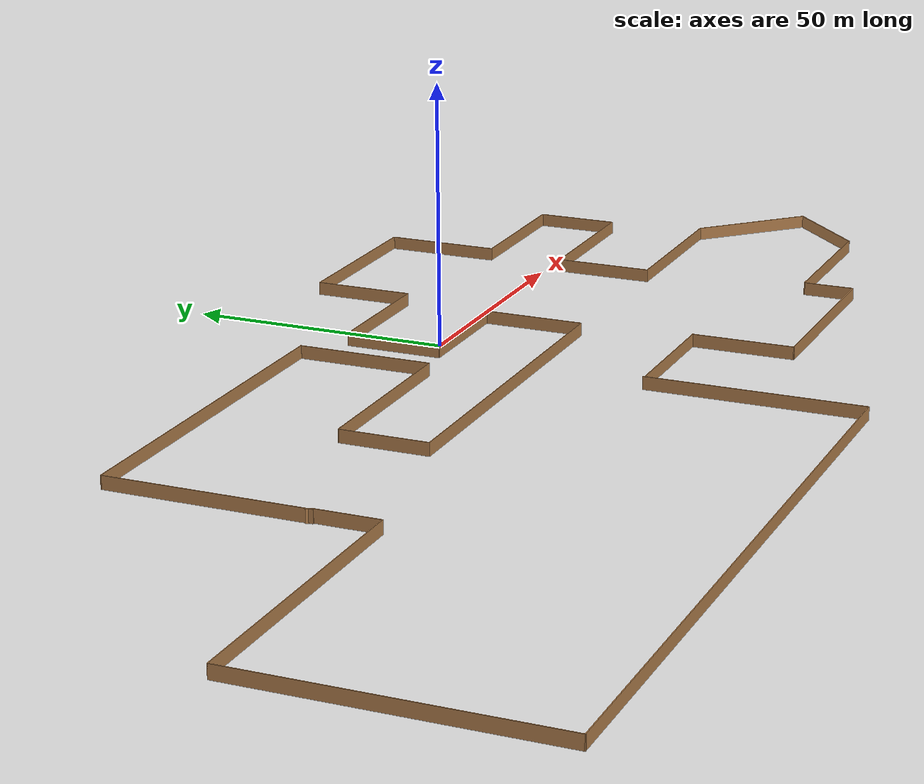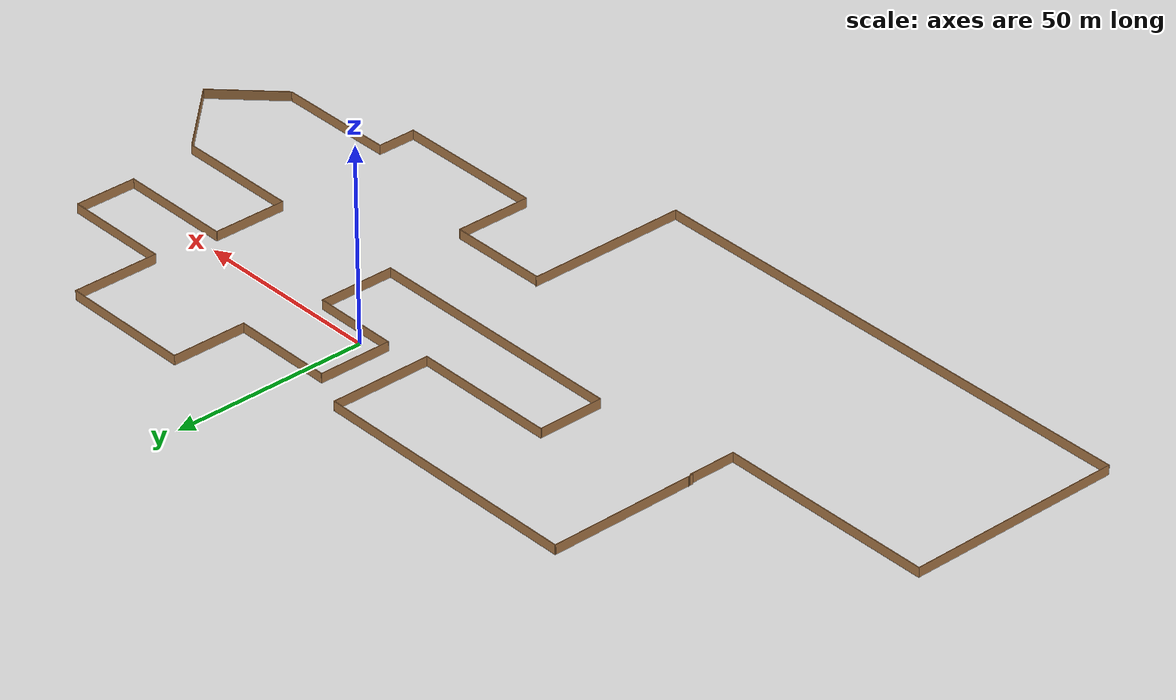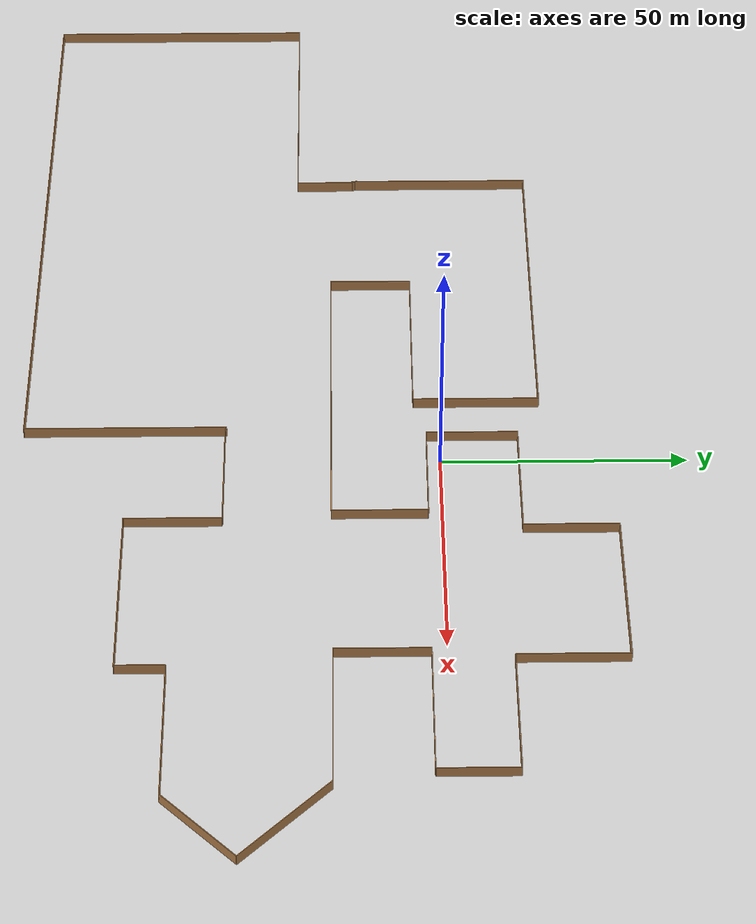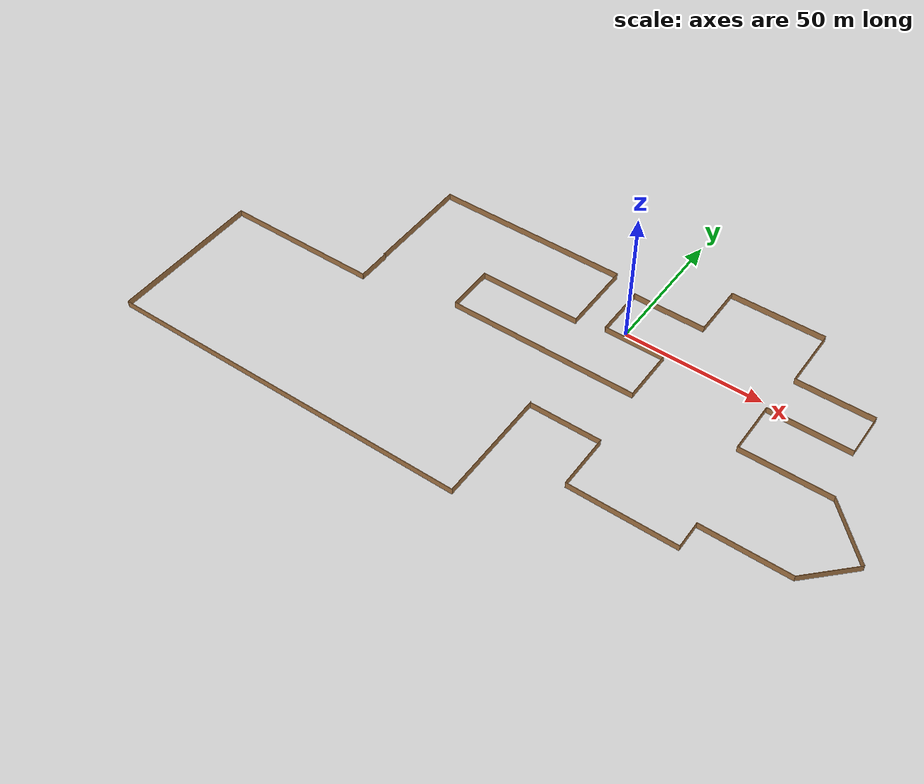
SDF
<?xml version='1.0'?>
<sdf version='1.7'>
  <model name='MediumBldng'>
    <pose>-19.9355 -24.9464 0 0 -0 0</pose>
    <link name='Wall_10'>
      <collision name='Wall_10_Collision'>
        <geometry>
          <box>
            <size>19.5 0.15 2.5</size>
          </box>
        </geometry>
        <pose>0 0 1.25 0 -0 0</pose>
      </collision>
      <visual name='Wall_10_Visual'>
        <pose>0 0 1.25 0 -0 0</pose>
        <geometry>
          <box>
            <size>19.5 0.15 2.5</size>
          </box>
        </geometry>
        <material>
          <script>
            <uri>file://media/materials/scripts/gazebo.material</uri>
            <name>Gazebo/Wood</name>
          </script>
          <ambient>1 1 1 1</ambient>
        </material>
        <meta>
          <layer>0</layer>
        </meta>
      </visual>
      <pose>35.709 12.4834 0 0 -0 1.5708</pose>
    </link>
    <link name='Wall_11'>
      <collision name='Wall_11_Collision'>
        <geometry>
          <box>
            <size>22.25 0.15 2.5</size>
          </box>
        </geometry>
        <pose>0 0 1.25 0 -0 0</pose>
      </collision>
      <visual name='Wall_11_Visual'>
        <pose>0 0 1.25 0 -0 0</pose>
        <geometry>
          <box>
            <size>22.25 0.15 2.5</size>
          </box>
        </geometry>
        <material>
          <script>
            <uri>file://media/materials/scripts/gazebo.material</uri>
            <name>Gazebo/Wood</name>
          </script>
          <ambient>1 1 1 1</ambient>
        </material>
        <meta>
          <layer>0</layer>
        </meta>
      </visual>
      <pose>24.659 22.1584 0 0 -0 3.14159</pose>
    </link>
    <link name='Wall_12'>
      <collision name='Wall_12_Collision'>
        <geometry>
          <box>
            <size>18.75 0.15 2.5</size>
          </box>
        </geometry>
        <pose>0 0 1.25 0 -0 0</pose>
      </collision>
      <visual name='Wall_12_Visual'>
        <pose>0 0 1.25 0 -0 0</pose>
        <geometry>
          <box>
            <size>18.75 0.15 2.5</size>
          </box>
        </geometry>
        <material>
          <script>
            <uri>file://media/materials/scripts/gazebo.material</uri>
            <name>Gazebo/Wood</name>
          </script>
          <ambient>1 1 1 1</ambient>
        </material>
        <meta>
          <layer>0</layer>
        </meta>
      </visual>
      <pose>13.609 31.4584 0 0 -0 1.5708</pose>
    </link>
    <link name='Wall_13'>
      <collision name='Wall_13_Collision'>
        <geometry>
          <box>
            <size>26.5 0.15 2.5</size>
          </box>
        </geometry>
        <pose>0 0 1.25 0 -0 0</pose>
      </collision>
      <visual name='Wall_13_Visual'>
        <pose>0 0 1.25 0 -0 0</pose>
        <geometry>
          <box>
            <size>26.5 0.15 2.5</size>
          </box>
        </geometry>
        <material>
          <script>
            <uri>file://media/materials/scripts/gazebo.material</uri>
            <name>Gazebo/Wood</name>
          </script>
          <ambient>1 1 1 1</ambient>
        </material>
        <meta>
          <layer>0</layer>
        </meta>
      </visual>
      <pose>26.784 40.7584 0 0 -0 0</pose>
    </link>
    <link name='Wall_15'>
      <collision name='Wall_15_Collision'>
        <geometry>
          <box>
            <size>19.25 0.15 2.5</size>
          </box>
        </geometry>
        <pose>0 0 1.25 0 -0 0</pose>
      </collision>
      <visual name='Wall_15_Visual'>
        <pose>0 0 1.25 0 -0 0</pose>
        <geometry>
          <box>
            <size>19.25 0.15 2.5</size>
          </box>
        </geometry>
        <material>
          <script>
            <uri>file://media/materials/scripts/gazebo.material</uri>
            <name>Gazebo/Wood</name>
          </script>
          <ambient>1 1 1 1</ambient>
        </material>
        <meta>
          <layer>0</layer>
        </meta>
      </visual>
      <pose>39.959 50.3084 0 0 -0 1.5708</pose>
    </link>
    <link name='Wall_16'>
      <collision name='Wall_16_Collision'>
        <geometry>
          <box>
            <size>34.5 0.15 2.5</size>
          </box>
        </geometry>
        <pose>0 0 1.25 0 -0 0</pose>
      </collision>
      <visual name='Wall_16_Visual'>
        <pose>0 0 1.25 0 -0 0</pose>
        <geometry>
          <box>
            <size>34.5 0.15 2.5</size>
          </box>
        </geometry>
        <material>
          <script>
            <uri>file://media/materials/scripts/gazebo.material</uri>
            <name>Gazebo/Wood</name>
          </script>
          <ambient>1 1 1 1</ambient>
        </material>
        <meta>
          <layer>0</layer>
        </meta>
      </visual>
      <pose>57.134 59.8584 0 0 -0 0</pose>
    </link>
    <link name='Wall_17'>
      <collision name='Wall_17_Collision'>
        <geometry>
          <box>
            <size>22.25 0.15 2.5</size>
          </box>
        </geometry>
        <pose>0 0 1.25 0 -0 0</pose>
      </collision>
      <visual name='Wall_17_Visual'>
        <pose>0 0 1.25 0 -0 0</pose>
        <geometry>
          <box>
            <size>22.25 0.15 2.5</size>
          </box>
        </geometry>
        <material>
          <script>
            <uri>file://media/materials/scripts/gazebo.material</uri>
            <name>Gazebo/Wood</name>
          </script>
          <ambient>1 1 1 1</ambient>
        </material>
        <meta>
          <layer>0</layer>
        </meta>
      </visual>
      <pose>74.309 48.8084 0 0 -0 -1.5708</pose>
    </link>
    <link name='Wall_18'>
      <collision name='Wall_18_Collision'>
        <geometry>
          <box>
            <size>28 0.15 2.5</size>
          </box>
        </geometry>
        <pose>0 0 1.25 0 -0 0</pose>
      </collision>
      <visual name='Wall_18_Visual'>
        <pose>0 0 1.25 0 -0 0</pose>
        <geometry>
          <box>
            <size>28 0.15 2.5</size>
          </box>
        </geometry>
        <material>
          <script>
            <uri>file://media/materials/scripts/gazebo.material</uri>
            <name>Gazebo/Wood</name>
          </script>
          <ambient>1 1 1 1</ambient>
        </material>
        <meta>
          <layer>0</layer>
        </meta>
      </visual>
      <pose>88.234 37.7584 0 0 -0 0</pose>
    </link>
    <link name='Wall_19'>
      <collision name='Wall_19_Collision'>
        <geometry>
          <box>
            <size>16 0.15 2.5</size>
          </box>
        </geometry>
        <pose>0 0 1.25 0 -0 0</pose>
      </collision>
      <visual name='Wall_19_Visual'>
        <pose>0 0 1.25 0 -0 0</pose>
        <geometry>
          <box>
            <size>16 0.15 2.5</size>
          </box>
        </geometry>
        <material>
          <script>
            <uri>file://media/materials/scripts/gazebo.material</uri>
            <name>Gazebo/Wood</name>
          </script>
          <ambient>1 1 1 1</ambient>
        </material>
        <meta>
          <layer>0</layer>
        </meta>
      </visual>
      <pose>102.159 29.8334 0 0 -0 -1.5708</pose>
    </link>
    <link name='Wall_20'>
      <collision name='Wall_20_Collision'>
        <geometry>
          <box>
            <size>29.75 0.15 2.5</size>
          </box>
        </geometry>
        <pose>0 0 1.25 0 -0 0</pose>
      </collision>
      <visual name='Wall_20_Visual'>
        <pose>0 0 1.25 0 -0 0</pose>
        <geometry>
          <box>
            <size>29.75 0.15 2.5</size>
          </box>
        </geometry>
        <material>
          <script>
            <uri>file://media/materials/scripts/gazebo.material</uri>
            <name>Gazebo/Wood</name>
          </script>
          <ambient>1 1 1 1</ambient>
        </material>
        <meta>
          <layer>0</layer>
        </meta>
      </visual>
      <pose>87.359 21.9084 0 0 -0 3.14159</pose>
    </link>
    <link name='Wall_21'>
      <collision name='Wall_21_Collision'>
        <geometry>
          <box>
            <size>19 0.15 2.5</size>
          </box>
        </geometry>
        <pose>0 0 1.25 0 -0 0</pose>
      </collision>
      <visual name='Wall_21_Visual'>
        <pose>0 0 1.25 0 -0 0</pose>
        <geometry>
          <box>
            <size>19 0.15 2.5</size>
          </box>
        </geometry>
        <material>
          <script>
            <uri>file://media/materials/scripts/gazebo.material</uri>
            <name>Gazebo/Wood</name>
          </script>
          <ambient>1 1 1 1</ambient>
        </material>
        <meta>
          <layer>0</layer>
        </meta>
      </visual>
      <pose>72.559 12.4834 0 0 -0 -1.5708</pose>
    </link>
    <link name='Wall_22'>
      <collision name='Wall_22_Collision'>
        <geometry>
          <box>
            <size>32.5 0.15 2.5</size>
          </box>
        </geometry>
        <pose>0 0 1.25 0 -0 0</pose>
      </collision>
      <visual name='Wall_22_Visual'>
        <pose>0 0 1.25 0 -0 0</pose>
        <geometry>
          <box>
            <size>32.5 0.15 2.5</size>
          </box>
        </geometry>
        <material>
          <script>
            <uri>file://media/materials/scripts/gazebo.material</uri>
            <name>Gazebo/Wood</name>
          </script>
          <ambient>1 1 1 1</ambient>
        </material>
        <meta>
          <layer>0</layer>
        </meta>
      </visual>
      <pose>88.734 3.05836 0 0 -0 0</pose>
    </link>
    <link name='Wall_23'>
      <collision name='Wall_23_Collision'>
        <geometry>
          <box>
            <size>24.5 0.15 2.5</size>
          </box>
        </geometry>
        <pose>0 0 1.25 0 -0 0</pose>
      </collision>
      <visual name='Wall_23_Visual'>
        <pose>0 0 1.25 0 -0 0</pose>
        <geometry>
          <box>
            <size>24.5 0.15 2.5</size>
          </box>
        </geometry>
        <material>
          <script>
            <uri>file://media/materials/scripts/gazebo.material</uri>
            <name>Gazebo/Wood</name>
          </script>
          <ambient>1 1 1 1</ambient>
        </material>
        <meta>
          <layer>0</layer>
        </meta>
      </visual>
      <pose>113.518 -5.55067 0 0 -0 -0.785398</pose>
    </link>
    <link name='Wall_24'>
      <collision name='Wall_24_Collision'>
        <geometry>
          <box>
            <size>20.5 0.15 2.5</size>
          </box>
        </geometry>
        <pose>0 0 1.25 0 -0 0</pose>
      </collision>
      <visual name='Wall_24_Visual'>
        <pose>0 0 1.25 0 -0 0</pose>
        <geometry>
          <box>
            <size>20.5 0.15 2.5</size>
          </box>
        </geometry>
        <material>
          <script>
            <uri>file://media/materials/scripts/gazebo.material</uri>
            <name>Gazebo/Wood</name>
          </script>
          <ambient>1 1 1 1</ambient>
        </material>
        <meta>
          <layer>0</layer>
        </meta>
      </visual>
      <pose>114.932 -21.3545 0 0 -0 -2.35619</pose>
    </link>
    <link name='Wall_25'>
      <collision name='Wall_25_Collision'>
        <geometry>
          <box>
            <size>31.5 0.15 2.5</size>
          </box>
        </geometry>
        <pose>0 0 1.25 0 -0 0</pose>
      </collision>
      <visual name='Wall_25_Visual'>
        <pose>0 0 1.25 0 -0 0</pose>
        <geometry>
          <box>
            <size>31.5 0.15 2.5</size>
          </box>
        </geometry>
        <material>
          <script>
            <uri>file://media/materials/scripts/gazebo.material</uri>
            <name>Gazebo/Wood</name>
          </script>
          <ambient>1 1 1 1</ambient>
        </material>
        <meta>
          <layer>0</layer>
        </meta>
      </visual>
      <pose>92.0624 -28.5493 0 0 -0 3.14159</pose>
    </link>
    <link name='Wall_26'>
      <collision name='Wall_26_Collision'>
        <geometry>
          <box>
            <size>10 0.15 2.5</size>
          </box>
        </geometry>
        <pose>0 0 1.25 0 -0 0</pose>
      </collision>
      <visual name='Wall_26_Visual'>
        <pose>0 0 1.25 0 -0 0</pose>
        <geometry>
          <box>
            <size>10 0.15 2.5</size>
          </box>
        </geometry>
        <material>
          <script>
            <uri>file://media/materials/scripts/gazebo.material</uri>
            <name>Gazebo/Wood</name>
          </script>
          <ambient>1 1 1 1</ambient>
        </material>
        <meta>
          <layer>0</layer>
        </meta>
      </visual>
      <pose>76.3874 -33.4743 0 0 -0 -1.5708</pose>
    </link>
    <link name='Wall_27'>
      <collision name='Wall_27_Collision'>
        <geometry>
          <box>
            <size>39 0.15 2.5</size>
          </box>
        </geometry>
        <pose>0 0 1.25 0 -0 0</pose>
      </collision>
      <visual name='Wall_27_Visual'>
        <pose>0 0 1.25 0 -0 0</pose>
        <geometry>
          <box>
            <size>39 0.15 2.5</size>
          </box>
        </geometry>
        <material>
          <script>
            <uri>file://media/materials/scripts/gazebo.material</uri>
            <name>Gazebo/Wood</name>
          </script>
          <ambient>1 1 1 1</ambient>
        </material>
        <meta>
          <layer>0</layer>
        </meta>
      </visual>
      <pose>56.9624 -38.3993 0 0 -0 3.14159</pose>
    </link>
    <link name='Wall_28'>
      <collision name='Wall_28_Collision'>
        <geometry>
          <box>
            <size>19.75 0.15 2.5</size>
          </box>
        </geometry>
        <pose>0 0 1.25 0 -0 0</pose>
      </collision>
      <visual name='Wall_28_Visual'>
        <pose>0 0 1.25 0 -0 0</pose>
        <geometry>
          <box>
            <size>19.75 0.15 2.5</size>
          </box>
        </geometry>
        <material>
          <script>
            <uri>file://media/materials/scripts/gazebo.material</uri>
            <name>Gazebo/Wood</name>
          </script>
          <ambient>1 1 1 1</ambient>
        </material>
        <meta>
          <layer>0</layer>
        </meta>
      </visual>
      <pose>37.5374 -28.5993 0 0 -0 1.5708</pose>
    </link>
    <link name='Wall_29'>
      <collision name='Wall_29_Collision'>
        <geometry>
          <box>
            <size>25.75 0.15 2.5</size>
          </box>
        </geometry>
        <pose>0 0 1.25 0 -0 0</pose>
      </collision>
      <visual name='Wall_29_Visual'>
        <pose>0 0 1.25 0 -0 0</pose>
        <geometry>
          <box>
            <size>25.75 0.15 2.5</size>
          </box>
        </geometry>
        <material>
          <script>
            <uri>file://media/materials/scripts/gazebo.material</uri>
            <name>Gazebo/Wood</name>
          </script>
          <ambient>1 1 1 1</ambient>
        </material>
        <meta>
          <layer>0</layer>
        </meta>
      </visual>
      <pose>24.7374 -18.7993 0 0 -0 3.14159</pose>
    </link>
    <link name='Wall_3'>
      <collision name='Wall_3_Collision'>
        <geometry>
          <box>
            <size>38.25 0.15 2.5</size>
          </box>
        </geometry>
        <pose>0 0 1.25 0 -0 0</pose>
      </collision>
      <visual name='Wall_3_Visual'>
        <pose>0 0 1.25 0 -0 0</pose>
        <geometry>
          <box>
            <size>38.25 0.15 2.5</size>
          </box>
        </geometry>
        <material>
          <script>
            <uri>file://media/materials/scripts/gazebo.material</uri>
            <name>Gazebo/Wood</name>
          </script>
          <ambient>1 1 1 1</ambient>
        </material>
        <meta>
          <layer>0</layer>
        </meta>
      </visual>
      <pose>-66.891 26.4584 0 0 -0 -1.5708</pose>
    </link>
    <link name='Wall_31'>
      <collision name='Wall_31_Collision'>
        <geometry>
          <box>
            <size>41.5 0.15 2.5</size>
          </box>
        </geometry>
        <pose>0 0 1.25 0 -0 0</pose>
      </collision>
      <visual name='Wall_31_Visual'>
        <pose>0 0 1.25 0 -0 0</pose>
        <geometry>
          <box>
            <size>41.5 0.15 2.5</size>
          </box>
        </geometry>
        <material>
          <script>
            <uri>file://media/materials/scripts/gazebo.material</uri>
            <name>Gazebo/Wood</name>
          </script>
          <ambient>1 1 1 1</ambient>
        </material>
        <meta>
          <layer>0</layer>
        </meta>
      </visual>
      <pose>11.6919 -39.1834 0 0 -0 -1.5708</pose>
    </link>
    <link name='Wall_32'>
      <collision name='Wall_32_Collision'>
        <geometry>
          <box>
            <size>134 0.15 2.5</size>
          </box>
        </geometry>
        <pose>0 0 1.25 0 -0 0</pose>
      </collision>
      <visual name='Wall_32_Visual'>
        <pose>0 0 1.25 0 -0 0</pose>
        <geometry>
          <box>
            <size>134 0.15 2.5</size>
          </box>
        </geometry>
        <material>
          <script>
            <uri>file://media/materials/scripts/gazebo.material</uri>
            <name>Gazebo/Wood</name>
          </script>
          <ambient>1 1 1 1</ambient>
        </material>
        <meta>
          <layer>0</layer>
        </meta>
      </visual>
      <pose>-55.2331 -59.8584 0 0 -0 3.14159</pose>
    </link>
    <link name='Wall_33'>
      <collision name='Wall_33_Collision'>
        <geometry>
          <box>
            <size>55.5 0.15 2.5</size>
          </box>
        </geometry>
        <pose>0 0 1.25 0 -0 0</pose>
      </collision>
      <visual name='Wall_33_Visual'>
        <pose>0 0 1.25 0 -0 0</pose>
        <geometry>
          <box>
            <size>55.5 0.15 2.5</size>
          </box>
        </geometry>
        <material>
          <script>
            <uri>file://media/materials/scripts/gazebo.material</uri>
            <name>Gazebo/Wood</name>
          </script>
          <ambient>1 1 1 1</ambient>
        </material>
        <meta>
          <layer>0</layer>
        </meta>
      </visual>
      <pose>-122.158 -32.1834 0 0 -0 1.5708</pose>
    </link>
    <link name='Wall_34'>
      <collision name='Wall_34_Collision'>
        <geometry>
          <box>
            <size>55.75 0.15 2.5</size>
          </box>
        </geometry>
        <pose>0 0 1.25 0 -0 0</pose>
      </collision>
      <visual name='Wall_34_Visual'>
        <pose>0 0 1.25 0 -0 0</pose>
        <geometry>
          <box>
            <size>55.75 0.15 2.5</size>
          </box>
        </geometry>
        <material>
          <script>
            <uri>file://media/materials/scripts/gazebo.material</uri>
            <name>Gazebo/Wood</name>
          </script>
          <ambient>1 1 1 1</ambient>
        </material>
        <meta>
          <layer>0</layer>
        </meta>
      </visual>
      <pose>-94.3581 -4.50835 0 0 -0 0</pose>
    </link>
    <link name='Wall_35'>
      <collision name='Wall_35_Collision'>
        <geometry>
          <box>
            <size>12.25 0.15 2.5</size>
          </box>
        </geometry>
        <pose>0 0 1.25 0 -0 0</pose>
      </collision>
      <visual name='Wall_35_Visual'>
        <pose>0 0 1.25 0 -0 0</pose>
        <geometry>
          <box>
            <size>12.25 0.15 2.5</size>
          </box>
        </geometry>
        <material>
          <script>
            <uri>file://media/materials/scripts/gazebo.material</uri>
            <name>Gazebo/Wood</name>
          </script>
          <ambient>1 1 1 1</ambient>
        </material>
        <meta>
          <layer>0</layer>
        </meta>
      </visual>
      <pose>-66.5581 1.54164 0 0 -0 1.5708</pose>
    </link>
    <link name='Wall_37'>
      <collision name='Wall_37_Collision'>
        <geometry>
          <box>
            <size>1.25 0.15 2.5</size>
          </box>
        </geometry>
        <pose>0 0 1.25 0 -0 0</pose>
      </collision>
      <visual name='Wall_37_Visual'>
        <pose>0 0 1.25 0 -0 0</pose>
        <geometry>
          <box>
            <size>1.25 0.15 2.5</size>
          </box>
        </geometry>
        <material>
          <script>
            <uri>file://media/materials/scripts/gazebo.material</uri>
            <name>Gazebo/Wood</name>
          </script>
          <ambient>1 1 1 1</ambient>
        </material>
        <meta>
          <layer>0</layer>
        </meta>
      </visual>
      <pose>-66.8331 8.06796 0 0 -0 2.0944</pose>
    </link>
    <link name='Wall_5'>
      <collision name='Wall_5_Collision'>
        <geometry>
          <box>
            <size>70.75 0.15 2.5</size>
          </box>
        </geometry>
        <pose>0 0 1.25 0 -0 0</pose>
      </collision>
      <visual name='Wall_5_Visual'>
        <pose>0 0 1.25 0 -0 0</pose>
        <geometry>
          <box>
            <size>70.75 0.15 2.5</size>
          </box>
        </geometry>
        <material>
          <script>
            <uri>file://media/materials/scripts/gazebo.material</uri>
            <name>Gazebo/Wood</name>
          </script>
          <ambient>1 1 1 1</ambient>
        </material>
        <meta>
          <layer>0</layer>
        </meta>
      </visual>
      <pose>-31.591 45.5084 0 0 -0 0</pose>
    </link>
    <link name='Wall_6'>
      <collision name='Wall_6_Collision'>
        <geometry>
          <box>
            <size>26 0.15 2.5</size>
          </box>
        </geometry>
        <pose>0 0 1.25 0 -0 0</pose>
      </collision>
      <visual name='Wall_6_Visual'>
        <pose>0 0 1.25 0 -0 0</pose>
        <geometry>
          <box>
            <size>26 0.15 2.5</size>
          </box>
        </geometry>
        <material>
          <script>
            <uri>file://media/materials/scripts/gazebo.material</uri>
            <name>Gazebo/Wood</name>
          </script>
          <ambient>1 1 1 1</ambient>
        </material>
        <meta>
          <layer>0</layer>
        </meta>
      </visual>
      <pose>3.709 32.5834 0 0 -0 -1.5708</pose>
    </link>
    <link name='Wall_7'>
      <collision name='Wall_7_Collision'>
        <geometry>
          <box>
            <size>37 0.15 2.5</size>
          </box>
        </geometry>
        <pose>0 0 1.25 0 -0 0</pose>
      </collision>
      <visual name='Wall_7_Visual'>
        <pose>0 0 1.25 0 -0 0</pose>
        <geometry>
          <box>
            <size>37 0.15 2.5</size>
          </box>
        </geometry>
        <material>
          <script>
            <uri>file://media/materials/scripts/gazebo.material</uri>
            <name>Gazebo/Wood</name>
          </script>
          <ambient>1 1 1 1</ambient>
        </material>
        <meta>
          <layer>0</layer>
        </meta>
      </visual>
      <pose>-14.716 19.6584 0 0 -0 3.14159</pose>
    </link>
    <link name='Wall_8'>
      <collision name='Wall_8_Collision'>
        <geometry>
          <box>
            <size>17 0.15 2.5</size>
          </box>
        </geometry>
        <pose>0 0 1.25 0 -0 0</pose>
      </collision>
      <visual name='Wall_8_Visual'>
        <pose>0 0 1.25 0 -0 0</pose>
        <geometry>
          <box>
            <size>17 0.15 2.5</size>
          </box>
        </geometry>
        <material>
          <script>
            <uri>file://media/materials/scripts/gazebo.material</uri>
            <name>Gazebo/Wood</name>
          </script>
          <ambient>1 1 1 1</ambient>
        </material>
        <meta>
          <layer>0</layer>
        </meta>
      </visual>
      <pose>-33.141 11.2334 0 0 -0 -1.5708</pose>
    </link>
    <link name='Wall_9'>
      <collision name='Wall_9_Collision'>
        <geometry>
          <box>
            <size>69 0.15 2.5</size>
          </box>
        </geometry>
        <pose>0 0 1.25 0 -0 0</pose>
      </collision>
      <visual name='Wall_9_Visual'>
        <pose>0 0 1.25 0 -0 0</pose>
        <geometry>
          <box>
            <size>69 0.15 2.5</size>
          </box>
        </geometry>
        <material>
          <script>
            <uri>file://media/materials/scripts/gazebo.material</uri>
            <name>Gazebo/Wood</name>
          </script>
          <ambient>1 1 1 1</ambient>
        </material>
        <meta>
          <layer>0</layer>
        </meta>
      </visual>
      <pose>1.284 2.80836 0 0 -0 0</pose>
    </link>
    <static>1</static>
  </model>
</sdf>
